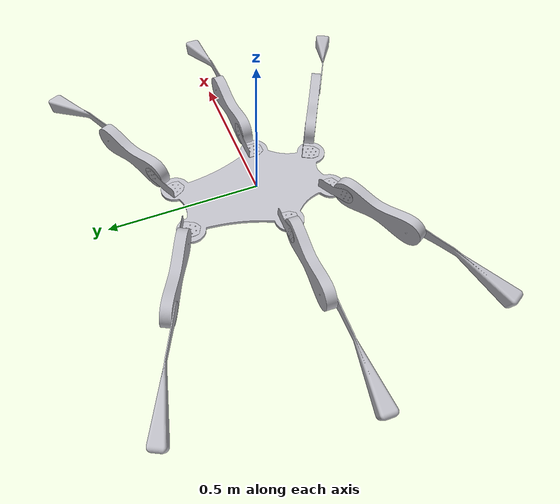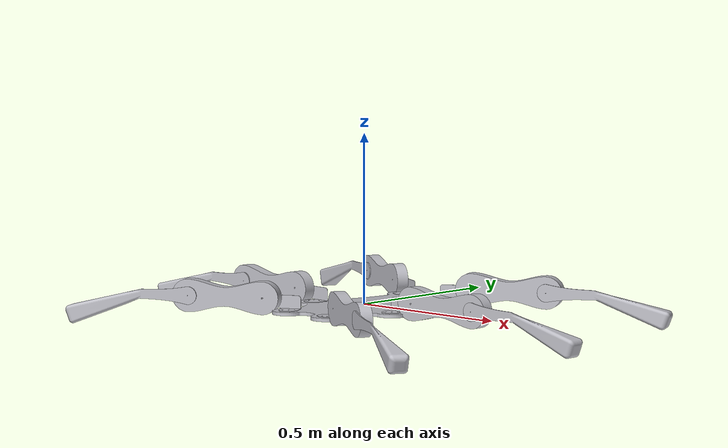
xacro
<?xml version="1.0" ?>
<robot name="assembly" xmlns:xacro="http://www.ros.org/wiki/xacro">

<xacro:include filename="$(find assembly_description)/urdf/materials.xacro" />
<xacro:include filename="$(find assembly_description)/urdf/assembly.trans" />
<xacro:include filename="$(find assembly_description)/urdf/assembly.gazebo" />
<link name="base_link">
  <inertial>
    <origin xyz="0.0008471798785983058 0.004861289651277688 -0.008482185119927165" rpy="0 0 0"/>
    <mass value="11.263155017509012"/>
    <inertia ixx="0.253898" iyy="0.08278" izz="0.33649" ixy="0.0" iyz="0.0" ixz="0.0"/>
  </inertial>
  <visual>
    <origin xyz="0 0 0" rpy="0 0 0"/>
    <geometry>
      <mesh filename="package://assembly_description/meshes/base_link.stl" scale="0.001 0.001 0.001"/>
    </geometry>
    <material name="silver"/>
  </visual>
  <collision>
    <origin xyz="0 0 0" rpy="0 0 0"/>
    <geometry>
      <mesh filename="package://assembly_description/meshes/base_link.stl" scale="0.001 0.001 0.001"/>
    </geometry>
  </collision>
</link>

<link name="MR_coxa_1">
  <inertial>
    <origin xyz="-0.16134 0.051471 0.003482" rpy="0 0 0"/>
    <mass value="0.0"/>
    <inertia ixx="0.0" iyy="0.0" izz="0.0" ixy="0.0" iyz="0.0" ixz="0.0"/>
  </inertial>
  <visual>
    <origin xyz="-0.16134 0.051471 0.003482" rpy="0 0 0"/>
    <geometry>
      <mesh filename="package://assembly_description/meshes/MR_coxa_1.stl" scale="0.001 0.001 0.001"/>
    </geometry>
    <material name="silver"/>
  </visual>
  <collision>
    <origin xyz="-0.16134 0.051471 0.003482" rpy="0 0 0"/>
    <geometry>
      <mesh filename="package://assembly_description/meshes/MR_coxa_1.stl" scale="0.001 0.001 0.001"/>
    </geometry>
  </collision>
</link>

<link name="FR_coxa_1">
  <inertial>
    <origin xyz="-0.090847 -0.255486 0.003482" rpy="0 0 0"/>
    <mass value="0.0"/>
    <inertia ixx="0.0" iyy="0.0" izz="0.0" ixy="0.0" iyz="0.0" ixz="0.0"/>
  </inertial>
  <visual>
    <origin xyz="-0.090847 -0.255486 0.003482" rpy="0 0 0"/>
    <geometry>
      <mesh filename="package://assembly_description/meshes/FR_coxa_1.stl" scale="0.001 0.001 0.001"/>
    </geometry>
    <material name="silver"/>
  </visual>
  <collision>
    <origin xyz="-0.090847 -0.255486 0.003482" rpy="0 0 0"/>
    <geometry>
      <mesh filename="package://assembly_description/meshes/FR_coxa_1.stl" scale="0.001 0.001 0.001"/>
    </geometry>
  </collision>
</link>

<link name="BR_coxa_1">
  <inertial>
    <origin xyz="-0.080847 0.23279 0.003482" rpy="0 0 0"/>
    <mass value="0.0"/>
    <inertia ixx="0.0" iyy="0.0" izz="0.0" ixy="0.0" iyz="0.0" ixz="0.0"/>
  </inertial>
  <visual>
    <origin xyz="-0.080847 0.23279 0.003482" rpy="0 0 0"/>
    <geometry>
      <mesh filename="package://assembly_description/meshes/BR_coxa_1.stl" scale="0.001 0.001 0.001"/>
    </geometry>
    <material name="silver"/>
  </visual>
  <collision>
    <origin xyz="-0.080847 0.23279 0.003482" rpy="0 0 0"/>
    <geometry>
      <mesh filename="package://assembly_description/meshes/BR_coxa_1.stl" scale="0.001 0.001 0.001"/>
    </geometry>
  </collision>
</link>

<link name="FL_coxa_1">
  <inertial>
    <origin xyz="0.089153 -0.255486 0.003482" rpy="0 0 0"/>
    <mass value="0.0"/>
    <inertia ixx="0.0" iyy="0.0" izz="0.0" ixy="0.0" iyz="0.0" ixz="0.0"/>
  </inertial>
  <visual>
    <origin xyz="0.089153 -0.255486 0.003482" rpy="0 0 0"/>
    <geometry>
      <mesh filename="package://assembly_description/meshes/FL_coxa_1.stl" scale="0.001 0.001 0.001"/>
    </geometry>
    <material name="silver"/>
  </visual>
  <collision>
    <origin xyz="0.089153 -0.255486 0.003482" rpy="0 0 0"/>
    <geometry>
      <mesh filename="package://assembly_description/meshes/FL_coxa_1.stl" scale="0.001 0.001 0.001"/>
    </geometry>
  </collision>
</link>

<link name="FL_femur_1">
  <inertial>
    <origin xyz="-0.11029048242100645 0.035471989809574445 4.0271584568832286e-07" rpy="0 0 0"/>
    <mass value="6.705065664318963"/>
    <inertia ixx="0.01616" iyy="0.052204" izz="0.061001" ixy="0.023772" iyz="-0.0" ixz="0.0"/>
  </inertial>
  <visual>
    <origin xyz="0.146674 -0.315226 -0.029046" rpy="0 0 0"/>
    <geometry>
      <mesh filename="package://assembly_description/meshes/FL_femur_1.stl" scale="0.001 0.001 0.001"/>
    </geometry>
    <material name="silver"/>
  </visual>
  <collision>
    <origin xyz="0.146674 -0.315226 -0.029046" rpy="0 0 0"/>
    <geometry>
      <mesh filename="package://assembly_description/meshes/FL_femur_1.stl" scale="0.001 0.001 0.001"/>
    </geometry>
  </collision>
</link>

<link name="BL_tibia_1">
  <inertial>
    <origin xyz="-0.24365603913458905 -0.1435076247203662 -0.04432699297836132" rpy="0 0 0"/>
    <mass value="2.550346216227082"/>
    <inertia ixx="0.005636" iyy="0.012714" izz="0.01573" ixy="-0.006643" iyz="-0.001802" ixz="-0.002974"/>
  </inertial>
  <visual>
    <origin xyz="0.344647 0.385059 -0.029047" rpy="0 0 0"/>
    <geometry>
      <mesh filename="package://assembly_description/meshes/BL_tibia_1.stl" scale="0.001 0.001 0.001"/>
    </geometry>
    <material name="silver"/>
  </visual>
  <collision>
    <origin xyz="0.344647 0.385059 -0.029047" rpy="0 0 0"/>
    <geometry>
      <mesh filename="package://assembly_description/meshes/BL_tibia_1.stl" scale="0.001 0.001 0.001"/>
    </geometry>
  </collision>
</link>

<link name="ML_tibia_1">
  <inertial>
    <origin xyz="-0.2827662078365218 -0.0024526810045005995 -0.044326992978361374" rpy="0 0 0"/>
    <mass value="2.550346216227082"/>
    <inertia ixx="0.001652" iyy="0.016698" izz="0.01573" ixy="-0.000257" iyz="-7.4e-05" ixz="-0.003476"/>
  </inertial>
  <visual>
    <origin xyz="0.465705 0.050593 -0.029047" rpy="0 0 0"/>
    <geometry>
      <mesh filename="package://assembly_description/meshes/ML_tibia_1.stl" scale="0.001 0.001 0.001"/>
    </geometry>
    <material name="silver"/>
  </visual>
  <collision>
    <origin xyz="0.465705 0.050593 -0.029047" rpy="0 0 0"/>
    <geometry>
      <mesh filename="package://assembly_description/meshes/ML_tibia_1.stl" scale="0.001 0.001 0.001"/>
    </geometry>
  </collision>
</link>

<link name="FL_tibia_1">
  <inertial>
    <origin xyz="-0.2573100817312584 0.11727917022203821 -0.044326992978362324" rpy="0 0 0"/>
    <mass value="2.550346216227082"/>
    <inertia ixx="0.004143" iyy="0.014207" izz="0.01573" ixy="0.005597" iyz="0.001402" ixz="-0.003182"/>
  </inertial>
  <visual>
    <origin xyz="0.366165 -0.385628 -0.029047" rpy="0 0 0"/>
    <geometry>
      <mesh filename="package://assembly_description/meshes/FL_tibia_1.stl" scale="0.001 0.001 0.001"/>
    </geometry>
    <material name="silver"/>
  </visual>
  <collision>
    <origin xyz="0.366165 -0.385628 -0.029047" rpy="0 0 0"/>
    <geometry>
      <mesh filename="package://assembly_description/meshes/FL_tibia_1.stl" scale="0.001 0.001 0.001"/>
    </geometry>
  </collision>
</link>

<link name="ML_coxa_1">
  <inertial>
    <origin xyz="0.159646 0.051471 0.003482" rpy="0 0 0"/>
    <mass value="0.0"/>
    <inertia ixx="0.0" iyy="0.0" izz="0.0" ixy="0.0" iyz="0.0" ixz="0.0"/>
  </inertial>
  <visual>
    <origin xyz="0.159646 0.051471 0.003482" rpy="0 0 0"/>
    <geometry>
      <mesh filename="package://assembly_description/meshes/ML_coxa_1.stl" scale="0.001 0.001 0.001"/>
    </geometry>
    <material name="silver"/>
  </visual>
  <collision>
    <origin xyz="0.159646 0.051471 0.003482" rpy="0 0 0"/>
    <geometry>
      <mesh filename="package://assembly_description/meshes/ML_coxa_1.stl" scale="0.001 0.001 0.001"/>
    </geometry>
  </collision>
</link>

<link name="BL_coxa_1">
  <inertial>
    <origin xyz="0.079153 0.23279 0.003482" rpy="0 0 0"/>
    <mass value="0.0"/>
    <inertia ixx="0.0" iyy="0.0" izz="0.0" ixy="0.0" iyz="0.0" ixz="0.0"/>
  </inertial>
  <visual>
    <origin xyz="0.079153 0.23279 0.003482" rpy="0 0 0"/>
    <geometry>
      <mesh filename="package://assembly_description/meshes/BL_coxa_1.stl" scale="0.001 0.001 0.001"/>
    </geometry>
    <material name="silver"/>
  </visual>
  <collision>
    <origin xyz="0.079153 0.23279 0.003482" rpy="0 0 0"/>
    <geometry>
      <mesh filename="package://assembly_description/meshes/BL_coxa_1.stl" scale="0.001 0.001 0.001"/>
    </geometry>
  </collision>
</link>

<link name="ML_femur_1">
  <inertial>
    <origin xyz="-0.1149484184032751 -0.01446297408074099 4.0271584682630146e-07" rpy="0 0 0"/>
    <mass value="6.705065664318963"/>
    <inertia ixx="0.004387" iyy="0.063977" izz="0.061001" ixy="0.001475" iyz="-0.0" ixz="0.0"/>
  </inertial>
  <visual>
    <origin xyz="0.237025 0.021637 -0.029046" rpy="0 0 0"/>
    <geometry>
      <mesh filename="package://assembly_description/meshes/ML_femur_1.stl" scale="0.001 0.001 0.001"/>
    </geometry>
    <material name="silver"/>
  </visual>
  <collision>
    <origin xyz="0.237025 0.021637 -0.029046" rpy="0 0 0"/>
    <geometry>
      <mesh filename="package://assembly_description/meshes/ML_femur_1.stl" scale="0.001 0.001 0.001"/>
    </geometry>
  </collision>
</link>

<link name="BL_femur_1">
  <inertial>
    <origin xyz="-0.09231673440290544 -0.06999931732268327 4.027158461185343e-07" rpy="0 0 0"/>
    <mass value="6.705065664318963"/>
    <inertia ixx="0.018008" iyy="0.050357" izz="0.061001" ixy="-0.025066" iyz="0.0" ixz="0.0"/>
  </inertial>
  <visual>
    <origin xyz="0.161082 0.245643 -0.029046" rpy="0 0 0"/>
    <geometry>
      <mesh filename="package://assembly_description/meshes/BL_femur_1.stl" scale="0.001 0.001 0.001"/>
    </geometry>
    <material name="silver"/>
  </visual>
  <collision>
    <origin xyz="0.161082 0.245643 -0.029046" rpy="0 0 0"/>
    <geometry>
      <mesh filename="package://assembly_description/meshes/BL_femur_1.stl" scale="0.001 0.001 0.001"/>
    </geometry>
  </collision>
</link>

<link name="FR_femur_1">
  <inertial>
    <origin xyz="0.10920092283881766 0.03493074590276829 6.761700534901882e-08" rpy="0 0 0"/>
    <mass value="6.705065664318963"/>
    <inertia ixx="0.01616" iyy="0.052204" izz="0.061001" ixy="-0.023772" iyz="0.0" ixz="0.0"/>
  </inertial>
  <visual>
    <origin xyz="-0.148368 -0.315226 -0.029046" rpy="0 0 0"/>
    <geometry>
      <mesh filename="package://assembly_description/meshes/FR_femur_1.stl" scale="0.001 0.001 0.001"/>
    </geometry>
    <material name="silver"/>
  </visual>
  <collision>
    <origin xyz="-0.148368 -0.315226 -0.029046" rpy="0 0 0"/>
    <geometry>
      <mesh filename="package://assembly_description/meshes/FR_femur_1.stl" scale="0.001 0.001 0.001"/>
    </geometry>
  </collision>
</link>

<link name="FR_tibia_1">
  <inertial>
    <origin xyz="0.2503203165467311 0.13134965047004704 -0.044326663176026085" rpy="0 0 0"/>
    <mass value="2.550346216227082"/>
    <inertia ixx="0.005144" iyy="0.013206" izz="0.01573" ixy="-0.006357" iyz="0.001688" ixz="0.00304"/>
  </inertial>
  <visual>
    <origin xyz="-0.367859 -0.385628 -0.029046" rpy="0 0 0"/>
    <geometry>
      <mesh filename="package://assembly_description/meshes/FR_tibia_1.stl" scale="0.001 0.001 0.001"/>
    </geometry>
    <material name="silver"/>
  </visual>
  <collision>
    <origin xyz="-0.367859 -0.385628 -0.029046" rpy="0 0 0"/>
    <geometry>
      <mesh filename="package://assembly_description/meshes/FR_tibia_1.stl" scale="0.001 0.001 0.001"/>
    </geometry>
  </collision>
</link>

<link name="BR_femur_1">
  <inertial>
    <origin xyz="0.09124841811037479 -0.06941726541801047 6.761700563351347e-08" rpy="0 0 0"/>
    <mass value="6.705065664318963"/>
    <inertia ixx="0.018008" iyy="0.050357" izz="0.061001" ixy="0.025066" iyz="-0.0" ixz="0.0"/>
  </inertial>
  <visual>
    <origin xyz="-0.162776 0.245643 -0.029046" rpy="0 0 0"/>
    <geometry>
      <mesh filename="package://assembly_description/meshes/BR_femur_1.stl" scale="0.001 0.001 0.001"/>
    </geometry>
    <material name="silver"/>
  </visual>
  <collision>
    <origin xyz="-0.162776 0.245643 -0.029046" rpy="0 0 0"/>
    <geometry>
      <mesh filename="package://assembly_description/meshes/BR_femur_1.stl" scale="0.001 0.001 0.001"/>
    </geometry>
  </collision>
</link>

<link name="BR_tibia_1">
  <inertial>
    <origin xyz="0.25117272765098597 -0.12971146666504613 -0.04432666317602593" rpy="0 0 0"/>
    <mass value="2.550346216227082"/>
    <inertia ixx="0.00458" iyy="0.01377" izz="0.01573" ixy="0.005962" iyz="-0.001522" ixz="0.003126"/>
  </inertial>
  <visual>
    <origin xyz="-0.346341 0.385059 -0.029046" rpy="0 0 0"/>
    <geometry>
      <mesh filename="package://assembly_description/meshes/BR_tibia_1.stl" scale="0.001 0.001 0.001"/>
    </geometry>
    <material name="silver"/>
  </visual>
  <collision>
    <origin xyz="-0.346341 0.385059 -0.029046" rpy="0 0 0"/>
    <geometry>
      <mesh filename="package://assembly_description/meshes/BR_tibia_1.stl" scale="0.001 0.001 0.001"/>
    </geometry>
  </collision>
</link>

<link name="MR_femur_1">
  <inertial>
    <origin xyz="0.11373220040839996 -0.014493049317919764 6.761700591800812e-08" rpy="0 0 0"/>
    <mass value="6.705065664318963"/>
    <inertia ixx="0.004387" iyy="0.063977" izz="0.061001" ixy="-0.001475" iyz="0.0" ixz="0.0"/>
  </inertial>
  <visual>
    <origin xyz="-0.238719 0.021637 -0.029046" rpy="0 0 0"/>
    <geometry>
      <mesh filename="package://assembly_description/meshes/MR_femur_1.stl" scale="0.001 0.001 0.001"/>
    </geometry>
    <material name="silver"/>
  </visual>
  <collision>
    <origin xyz="-0.238719 0.021637 -0.029046" rpy="0 0 0"/>
    <geometry>
      <mesh filename="package://assembly_description/meshes/MR_femur_1.stl" scale="0.001 0.001 0.001"/>
    </geometry>
  </collision>
</link>

<link name="MR_tibia_1">
  <inertial>
    <origin xyz="0.2823777690224717 0.013253497777558826 -0.044326663176026695" rpy="0 0 0"/>
    <mass value="2.550346216227082"/>
    <inertia ixx="0.001714" iyy="0.016635" izz="0.01573" ixy="-0.000999" iyz="0.000245" ixz="0.003468"/>
  </inertial>
  <visual>
    <origin xyz="-0.467399 0.050593 -0.029046" rpy="0 0 0"/>
    <geometry>
      <mesh filename="package://assembly_description/meshes/MR_tibia_1.stl" scale="0.001 0.001 0.001"/>
    </geometry>
    <material name="silver"/>
  </visual>
  <collision>
    <origin xyz="-0.467399 0.050593 -0.029046" rpy="0 0 0"/>
    <geometry>
      <mesh filename="package://assembly_description/meshes/MR_tibia_1.stl" scale="0.001 0.001 0.001"/>
    </geometry>
  </collision>
</link>

<joint name="Rigid 1" type="fixed">
  <origin xyz="0.16134 -0.051471 -0.003482" rpy="0 0 0"/>
  <parent link="base_link"/>
  <child link="MR_coxa_1"/>
</joint>

<joint name="Rigid 2" type="fixed">
  <origin xyz="0.090847 0.255486 -0.003482" rpy="0 0 0"/>
  <parent link="base_link"/>
  <child link="FR_coxa_1"/>
</joint>

<joint name="Rigid 3" type="fixed">
  <origin xyz="0.080847 -0.23279 -0.003482" rpy="0 0 0"/>
  <parent link="base_link"/>
  <child link="BR_coxa_1"/>
</joint>

<joint name="Rigid 4" type="fixed">
  <origin xyz="-0.089153 0.255486 -0.003482" rpy="0 0 0"/>
  <parent link="base_link"/>
  <child link="FL_coxa_1"/>
</joint>

<joint name="Rigid 8" type="fixed">
  <origin xyz="-0.057521 0.05974 0.032528" rpy="0 0 0"/>
  <parent link="FL_coxa_1"/>
  <child link="FL_femur_1"/>
</joint>

<joint name="Rigid 16" type="fixed">
  <origin xyz="-0.183565 -0.139416 1e-06" rpy="0 0 0"/>
  <parent link="BL_femur_1"/>
  <child link="BL_tibia_1"/>
</joint>

<joint name="Rigid 17" type="fixed">
  <origin xyz="-0.22868 -0.028956 1e-06" rpy="0 0 0"/>
  <parent link="ML_femur_1"/>
  <child link="ML_tibia_1"/>
</joint>

<joint name="Rigid 18" type="fixed">
  <origin xyz="-0.219491 0.070402 1e-06" rpy="0 0 0"/>
  <parent link="FL_femur_1"/>
  <child link="FL_tibia_1"/>
</joint>

<joint name="Rigid 19" type="fixed">
  <origin xyz="-0.159646 -0.051471 -0.003482" rpy="0 0 0"/>
  <parent link="base_link"/>
  <child link="ML_coxa_1"/>
</joint>

<joint name="Rigid 20" type="fixed">
  <origin xyz="-0.079153 -0.23279 -0.003482" rpy="0 0 0"/>
  <parent link="base_link"/>
  <child link="BL_coxa_1"/>
</joint>

<joint name="Rigid 21" type="fixed">
  <origin xyz="-0.077379 0.029834 0.032528" rpy="0 0 0"/>
  <parent link="ML_coxa_1"/>
  <child link="ML_femur_1"/>
</joint>

<joint name="Rigid 22" type="fixed">
  <origin xyz="-0.081929 -0.012853 0.032528" rpy="0 0 0"/>
  <parent link="BL_coxa_1"/>
  <child link="BL_femur_1"/>
</joint>

<joint name="Rigid 23" type="fixed">
  <origin xyz="0.057521 0.05974 0.032528" rpy="0 0 0"/>
  <parent link="FR_coxa_1"/>
  <child link="FR_femur_1"/>
</joint>

<joint name="Rigid 24" type="fixed">
  <origin xyz="0.219491 0.070402 0.0" rpy="0 0 0"/>
  <parent link="FR_femur_1"/>
  <child link="FR_tibia_1"/>
</joint>

<joint name="Rigid 25" type="fixed">
  <origin xyz="0.081929 -0.012853 0.032528" rpy="0 0 0"/>
  <parent link="BR_coxa_1"/>
  <child link="BR_femur_1"/>
</joint>

<joint name="Rigid 26" type="fixed">
  <origin xyz="0.183565 -0.139416 0.0" rpy="0 0 0"/>
  <parent link="BR_femur_1"/>
  <child link="BR_tibia_1"/>
</joint>

<joint name="Rigid 27" type="fixed">
  <origin xyz="0.077379 0.029834 0.032528" rpy="0 0 0"/>
  <parent link="MR_coxa_1"/>
  <child link="MR_femur_1"/>
</joint>

<joint name="Rigid 28" type="fixed">
  <origin xyz="0.22868 -0.028956 0.0" rpy="0 0 0"/>
  <parent link="MR_femur_1"/>
  <child link="MR_tibia_1"/>
</joint>

</robot>
